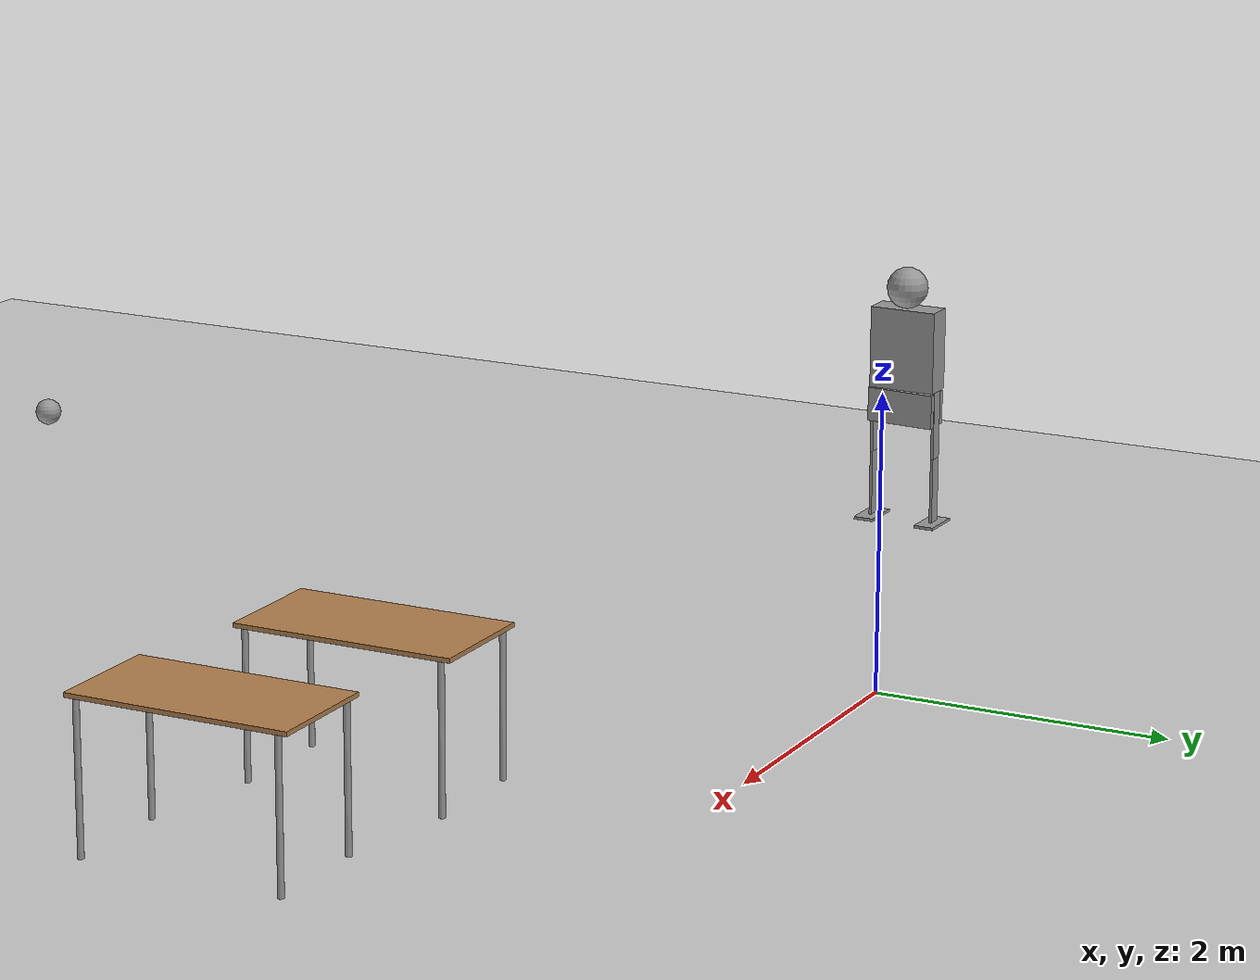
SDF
<sdf version="1.6">
 <world name="default">
  <model name="ground_plane">
   <static>1</static>
   <link name="link">
    <collision name="collision">
     <geometry><plane><normal>0 0 1</normal><size>100 100</size></plane></geometry>
     <surface>
      <contact><collide_bitmask>65535</collide_bitmask></contact>
      <friction><ode><mu>100</mu><mu2>50</mu2></ode></friction>
     </surface>
    </collision>
    <visual name="visual">
     <cast_shadows>0</cast_shadows>
     <geometry><plane><normal>0 0 1</normal><size>100 100</size></plane></geometry>
     <material>
      <script><uri>file://media/materials/scripts/gazebo.material</uri><name>Gazebo/Grey</name></script>
     </material>
    </visual>
   </link>
  </model>
  <model name="table_0">
   <static>1</static>
   <link name="link">
    <collision name="surface">
     <pose>0 0 1 0 -0 0</pose>
     <geometry><box><size>1.5 0.8 0.03</size></box></geometry>
     <surface><friction><ode><mu>0.6</mu><mu2>0.6</mu2></ode></friction></surface>
    </collision>
    <visual name="visual1">
     <pose>0 0 1 0 -0 0</pose>
     <geometry><box><size>1.5 0.8 0.03</size></box></geometry>
     <material>
      <script><uri>file://media/materials/scripts/gazebo.material</uri><name>Gazebo/Wood</name></script>
     </material>
    </visual>
    <collision name="front_left_leg">
     <pose>0.68 0.38 0.5 0 -0 0</pose>
     <geometry><cylinder><radius>0.02</radius><length>1</length></cylinder></geometry>
    </collision>
    <visual name="front_left_leg">
     <pose>0.68 0.38 0.5 0 -0 0</pose>
     <geometry><cylinder><radius>0.02</radius><length>1</length></cylinder></geometry>
     <material>
      <script><uri>file://media/materials/scripts/gazebo.material</uri><name>Gazebo/Grey</name></script>
     </material>
    </visual>
    <collision name="front_right_leg">
     <pose>0.68 -0.38 0.5 0 -0 0</pose>
     <geometry><cylinder><radius>0.02</radius><length>1</length></cylinder></geometry>
    </collision>
    <visual name="front_right_leg">
     <pose>0.68 -0.38 0.5 0 -0 0</pose>
     <geometry><cylinder><radius>0.02</radius><length>1</length></cylinder></geometry>
     <material>
      <script><uri>file://media/materials/scripts/gazebo.material</uri><name>Gazebo/Grey</name></script>
     </material>
    </visual>
    <collision name="back_right_leg">
     <pose>-0.68 -0.38 0.5 0 -0 0</pose>
     <geometry><cylinder><radius>0.02</radius><length>1</length></cylinder></geometry>
    </collision>
    <visual name="back_right_leg">
     <pose>-0.68 -0.38 0.5 0 -0 0</pose>
     <geometry><cylinder><radius>0.02</radius><length>1</length></cylinder></geometry>
     <material>
      <script><uri>file://media/materials/scripts/gazebo.material</uri><name>Gazebo/Grey</name></script>
     </material>
    </visual>
    <collision name="back_left_leg">
     <pose>-0.68 0.38 0.5 0 -0 0</pose>
     <geometry><cylinder><radius>0.02</radius><length>1</length></cylinder></geometry>
    </collision>
    <visual name="back_left_leg">
     <pose>-0.68 0.38 0.5 0 -0 0</pose>
     <geometry><cylinder><radius>0.02</radius><length>1</length></cylinder></geometry>
     <material>
      <script><uri>file://media/materials/scripts/gazebo.material</uri><name>Gazebo/Grey</name></script>
     </material>
    </visual>
   </link>
   <pose>2.98482 -2.02047 0 0 0 -1.5708</pose>
  </model>
  <model name="table_2">
   <static>1</static>
   <link name="link">
    <collision name="surface">
     <pose>0 0 1 0 -0 0</pose>
     <geometry><box><size>1.5 0.8 0.03</size></box></geometry>
     <surface><friction><ode><mu>0.6</mu><mu2>0.6</mu2></ode></friction></surface>
    </collision>
    <visual name="visual1">
     <pose>0 0 1 0 -0 0</pose>
     <geometry><box><size>1.5 0.8 0.03</size></box></geometry>
     <material>
      <script><uri>file://media/materials/scripts/gazebo.material</uri><name>Gazebo/Wood</name></script>
     </material>
    </visual>
    <collision name="front_left_leg">
     <pose>0.68 0.38 0.5 0 -0 0</pose>
     <geometry><cylinder><radius>0.02</radius><length>1</length></cylinder></geometry>
    </collision>
    <visual name="front_left_leg">
     <pose>0.68 0.38 0.5 0 -0 0</pose>
     <geometry><cylinder><radius>0.02</radius><length>1</length></cylinder></geometry>
     <material>
      <script><uri>file://media/materials/scripts/gazebo.material</uri><name>Gazebo/Grey</name></script>
     </material>
    </visual>
    <collision name="front_right_leg">
     <pose>0.68 -0.38 0.5 0 -0 0</pose>
     <geometry><cylinder><radius>0.02</radius><length>1</length></cylinder></geometry>
    </collision>
    <visual name="front_right_leg">
     <pose>0.68 -0.38 0.5 0 -0 0</pose>
     <geometry><cylinder><radius>0.02</radius><length>1</length></cylinder></geometry>
     <material>
      <script><uri>file://media/materials/scripts/gazebo.material</uri><name>Gazebo/Grey</name></script>
     </material>
    </visual>
    <collision name="back_right_leg">
     <pose>-0.68 -0.38 0.5 0 -0 0</pose>
     <geometry><cylinder><radius>0.02</radius><length>1</length></cylinder></geometry>
    </collision>
    <visual name="back_right_leg">
     <pose>-0.68 -0.38 0.5 0 -0 0</pose>
     <geometry><cylinder><radius>0.02</radius><length>1</length></cylinder></geometry>
     <material>
      <script><uri>file://media/materials/scripts/gazebo.material</uri><name>Gazebo/Grey</name></script>
     </material>
    </visual>
    <collision name="back_left_leg">
     <pose>-0.68 0.38 0.5 0 -0 0</pose>
     <geometry><cylinder><radius>0.02</radius><length>1</length></cylinder></geometry>
    </collision>
    <visual name="back_left_leg">
     <pose>-0.68 0.38 0.5 0 -0 0</pose>
     <geometry><cylinder><radius>0.02</radius><length>1</length></cylinder></geometry>
     <material>
      <script><uri>file://media/materials/scripts/gazebo.material</uri><name>Gazebo/Grey</name></script>
     </material>
    </visual>
   </link>
   <pose>4.56851 -2.18349 0 0 0 -1.5708</pose>
  </model>
  <model name="HumanoidRobot">
   <link name="link_0">
    <inertial>
     <mass>1</mass>
     <inertia>
      <ixx>0.166667</ixx>
      <ixy>0</ixy>
      <ixz>0</ixz>
      <iyy>0.166667</iyy>
      <iyz>0</iyz>
      <izz>0.166667</izz>
     </inertia>
    </inertial>
    <pose>-0.343615 0.441205 -0.57 0 -0 0</pose>
    <visual name="visual">
     <geometry><box><size>0.3 0.15 0.02</size></box></geometry>
     <material>
      <lighting>1</lighting>
      <script><uri>file://media/materials/scripts/gazebo.material</uri><name>Gazebo/Grey</name></script>
      <shader type="vertex"><normal_map>__default__</normal_map></shader>
      <ambient>0.3 0.3 0.3 1</ambient>
      <diffuse>0.7 0.7 0.7 1</diffuse>
      <specular>0.01 0.01 0.01 1</specular>
      <emissive>0 0 0 1</emissive>
     </material>
    </visual>
    <collision name="collision">
     <geometry><box><size>0.3 0.15 0.02</size></box></geometry>
     <surface>
      <friction>
       <ode><mu>1</mu><mu2>1</mu2><fdir1>0 0 0</fdir1><slip1>0</slip1><slip2>0</slip2></ode>
       <torsional>
        <coefficient>1</coefficient>
        <patch_radius>0</patch_radius>
        <surface_radius>0</surface_radius>
        <use_patch_radius>1</use_patch_radius>
        <ode><slip>0</slip></ode>
       </torsional>
      </friction>
      <bounce><restitution_coefficient>0</restitution_coefficient><threshold>1e+06</threshold></bounce>
      <contact>
       <collide_without_contact>0</collide_without_contact>
       <collide_without_contact_bitmask>1</collide_without_contact_bitmask>
       <collide_bitmask>1</collide_bitmask>
       <ode>
        <soft_cfm>0</soft_cfm>
        <soft_erp>0.2</soft_erp>
        <kp>1e+13</kp>
        <kd>1</kd>
        <max_vel>0.01</max_vel>
        <min_depth>0</min_depth>
       </ode>
       <bullet>
        <split_impulse>1</split_impulse>
        <split_impulse_penetration_threshold>-0.01</split_impulse_penetration_threshold>
        <soft_cfm>0</soft_cfm>
        <soft_erp>0.2</soft_erp>
        <kp>1e+13</kp>
        <kd>1</kd>
       </bullet>
      </contact>
     </surface>
    </collision>
   </link>
   <link name="link_0_0">
    <inertial>
     <mass>1</mass>
     <inertia>
      <ixx>0.166667</ixx>
      <ixy>0</ixy>
      <ixz>0</ixz>
      <iyy>0.166667</iyy>
      <iyz>0</iyz>
      <izz>0.166667</izz>
     </inertia>
    </inertial>
    <pose>-0.343165 0.687318 0.290025 -0.02 -0 0.000135</pose>
    <visual name="visual">
     <geometry><box><size>0.2 0.5 0.25</size></box></geometry>
     <material>
      <lighting>1</lighting>
      <script><uri>file://media/materials/scripts/gazebo.material</uri><name>Gazebo/Grey</name></script>
      <emissive>0 0 0 1</emissive>
      <shader type="vertex"><normal_map>__default__</normal_map></shader>
      <ambient>0.3 0.3 0.3 1</ambient>
      <diffuse>0.7 0.7 0.7 1</diffuse>
      <specular>0.01 0.01 0.01 1</specular>
     </material>
    </visual>
    <collision name="collision">
     <geometry><box><size>0.2 0.5 0.25</size></box></geometry>
     <surface>
      <friction>
       <ode><mu>1</mu><mu2>1</mu2><fdir1>0 0 0</fdir1><slip1>0</slip1><slip2>0</slip2></ode>
       <torsional>
        <coefficient>1</coefficient>
        <patch_radius>0</patch_radius>
        <surface_radius>0</surface_radius>
        <use_patch_radius>1</use_patch_radius>
        <ode><slip>0</slip></ode>
       </torsional>
      </friction>
      <bounce><restitution_coefficient>0</restitution_coefficient><threshold>1e+06</threshold></bounce>
      <contact>
       <collide_without_contact>0</collide_without_contact>
       <collide_without_contact_bitmask>1</collide_without_contact_bitmask>
       <collide_bitmask>1</collide_bitmask>
       <ode>
        <soft_cfm>0</soft_cfm>
        <soft_erp>0.2</soft_erp>
        <kp>1e+13</kp>
        <kd>1</kd>
        <max_vel>0.01</max_vel>
        <min_depth>0</min_depth>
       </ode>
       <bullet>
        <split_impulse>1</split_impulse>
        <split_impulse_penetration_threshold>-0.01</split_impulse_penetration_threshold>
        <soft_cfm>0</soft_cfm>
        <soft_erp>0.2</soft_erp>
        <kp>1e+13</kp>
        <kd>1</kd>
       </bullet>
      </contact>
     </surface>
    </collision>
   </link>
   <link name="link_0_1">
    <inertial>
     <mass>1</mass>
     <inertia>
      <ixx>0.166667</ixx>
      <ixy>0</ixy>
      <ixz>0</ixz>
      <iyy>0.166667</iyy>
      <iyz>0</iyz>
      <izz>0.166667</izz>
     </inertia>
    </inertial>
    <pose>-0.363163 0.687646 0.720003 1.1e-05 -1e-06 -0.016637</pose>
    <visual name="visual">
     <geometry><box><size>0.2 0.5 0.6</size></box></geometry>
     <material>
      <lighting>1</lighting>
      <script><uri>file://media/materials/scripts/gazebo.material</uri><name>Gazebo/Grey</name></script>
      <shader type="vertex"><normal_map>__default__</normal_map></shader>
      <ambient>0.3 0.3 0.3 1</ambient>
      <diffuse>0.7 0.7 0.7 1</diffuse>
      <specular>0.01 0.01 0.01 1</specular>
      <emissive>0 0 0 1</emissive>
     </material>
    </visual>
    <collision name="collision">
     <geometry><box><size>0.2 0.5 0.6</size></box></geometry>
     <surface>
      <friction>
       <ode><mu>1</mu><mu2>1</mu2><fdir1>0 0 0</fdir1><slip1>0</slip1><slip2>0</slip2></ode>
       <torsional>
        <coefficient>1</coefficient>
        <patch_radius>0</patch_radius>
        <surface_radius>0</surface_radius>
        <use_patch_radius>1</use_patch_radius>
        <ode><slip>0</slip></ode>
       </torsional>
      </friction>
      <bounce><restitution_coefficient>0</restitution_coefficient><threshold>1e+06</threshold></bounce>
      <contact>
       <collide_without_contact>0</collide_without_contact>
       <collide_without_contact_bitmask>1</collide_without_contact_bitmask>
       <collide_bitmask>1</collide_bitmask>
       <ode>
        <soft_cfm>0</soft_cfm>
        <soft_erp>0.2</soft_erp>
        <kp>1e+13</kp>
        <kd>1</kd>
        <max_vel>0.01</max_vel>
        <min_depth>0</min_depth>
       </ode>
       <bullet>
        <split_impulse>1</split_impulse>
        <split_impulse_penetration_threshold>-0.01</split_impulse_penetration_threshold>
        <soft_cfm>0</soft_cfm>
        <soft_erp>0.2</soft_erp>
        <kp>1e+13</kp>
        <kd>1</kd>
       </bullet>
      </contact>
     </surface>
    </collision>
   </link>
   <link name="link_0_clone">
    <inertial>
     <mass>1</mass>
     <inertia>
      <ixx>0.166667</ixx>
      <ixy>0</ixy>
      <ixz>0</ixz>
      <iyy>0.166667</iyy>
      <iyz>0</iyz>
      <izz>0.166667</izz>
     </inertia>
    </inertial>
    <pose>-0.332418 0.927316 -0.56999 1.1e-05 -1e-06 -0.016637</pose>
    <visual name="visual">
     <geometry><box><size>0.3 0.15 0.02</size></box></geometry>
     <material>
      <lighting>1</lighting>
      <script><uri>file://media/materials/scripts/gazebo.material</uri><name>Gazebo/Grey</name></script>
      <shader type="vertex"><normal_map>__default__</normal_map></shader>
      <ambient>0.3 0.3 0.3 1</ambient>
      <diffuse>0.7 0.7 0.7 1</diffuse>
      <specular>0.01 0.01 0.01 1</specular>
      <emissive>0 0 0 1</emissive>
     </material>
    </visual>
    <collision name="collision">
     <geometry><box><size>0.3 0.15 0.02</size></box></geometry>
     <surface>
      <friction>
       <ode><mu>1</mu><mu2>1</mu2><fdir1>0 0 0</fdir1><slip1>0</slip1><slip2>0</slip2></ode>
       <torsional>
        <coefficient>1</coefficient>
        <patch_radius>0</patch_radius>
        <surface_radius>0</surface_radius>
        <use_patch_radius>1</use_patch_radius>
        <ode><slip>0</slip></ode>
       </torsional>
      </friction>
      <bounce><restitution_coefficient>0</restitution_coefficient><threshold>1e+06</threshold></bounce>
      <contact>
       <collide_without_contact>0</collide_without_contact>
       <collide_without_contact_bitmask>1</collide_without_contact_bitmask>
       <collide_bitmask>1</collide_bitmask>
       <ode>
        <soft_cfm>0</soft_cfm>
        <soft_erp>0.2</soft_erp>
        <kp>1e+13</kp>
        <kd>1</kd>
        <max_vel>0.01</max_vel>
        <min_depth>0</min_depth>
       </ode>
       <bullet>
        <split_impulse>1</split_impulse>
        <split_impulse_penetration_threshold>-0.01</split_impulse_penetration_threshold>
        <soft_cfm>0</soft_cfm>
        <soft_erp>0.2</soft_erp>
        <kp>1e+13</kp>
        <kd>1</kd>
       </bullet>
      </contact>
     </surface>
    </collision>
   </link>
   <link name="link_1">
    <inertial>
     <mass>1</mass>
     <inertia>
      <ixx>0.166667</ixx>
      <ixy>0</ixy>
      <ixz>0</ixz>
      <iyy>0.166667</iyy>
      <iyz>0</iyz>
      <izz>0.166667</izz>
     </inertia>
    </inertial>
    <pose>-0.35434 0.444776 -0.33 0 -0 0</pose>
    <visual name="visual">
     <geometry><box><size>0.1 0.02 0.5</size></box></geometry>
     <material>
      <lighting>1</lighting>
      <script><uri>file://media/materials/scripts/gazebo.material</uri><name>Gazebo/Grey</name></script>
      <shader type="vertex"><normal_map>__default__</normal_map></shader>
      <ambient>0.3 0.3 0.3 1</ambient>
      <diffuse>0.7 0.7 0.7 1</diffuse>
      <specular>0.01 0.01 0.01 1</specular>
      <emissive>0 0 0 1</emissive>
     </material>
    </visual>
    <collision name="collision">
     <geometry><box><size>0.1 0.02 0.5</size></box></geometry>
     <surface>
      <friction>
       <ode><mu>1</mu><mu2>1</mu2><fdir1>0 0 0</fdir1><slip1>0</slip1><slip2>0</slip2></ode>
       <torsional>
        <coefficient>1</coefficient>
        <patch_radius>0</patch_radius>
        <surface_radius>0</surface_radius>
        <use_patch_radius>1</use_patch_radius>
        <ode><slip>0</slip></ode>
       </torsional>
      </friction>
      <bounce><restitution_coefficient>0</restitution_coefficient><threshold>1e+06</threshold></bounce>
      <contact>
       <collide_without_contact>0</collide_without_contact>
       <collide_without_contact_bitmask>1</collide_without_contact_bitmask>
       <collide_bitmask>1</collide_bitmask>
       <ode>
        <soft_cfm>0</soft_cfm>
        <soft_erp>0.2</soft_erp>
        <kp>1e+13</kp>
        <kd>1</kd>
        <max_vel>0.01</max_vel>
        <min_depth>0</min_depth>
       </ode>
       <bullet>
        <split_impulse>1</split_impulse>
        <split_impulse_penetration_threshold>-0.01</split_impulse_penetration_threshold>
        <soft_cfm>0</soft_cfm>
        <soft_erp>0.2</soft_erp>
        <kp>1e+13</kp>
        <kd>1</kd>
       </bullet>
      </contact>
     </surface>
    </collision>
   </link>
   <link name="link_1_0">
    <inertial>
     <mass>1</mass>
     <inertia><ixx>0.1</ixx><ixy>0</ixy><ixz>0</ixz><iyy>0.1</iyy><iyz>0</iyz><izz>0.1</izz></inertia>
    </inertial>
    <pose>-0.343166 0.687308 1.17 1.1e-05 -1e-06 -0.016637</pose>
    <visual name="visual">
     <geometry><sphere><radius>0.15</radius></sphere></geometry>
     <material>
      <lighting>1</lighting>
      <script><uri>file://media/materials/scripts/gazebo.material</uri><name>Gazebo/Grey</name></script>
      <shader type="vertex"><normal_map>__default__</normal_map></shader>
      <ambient>0.3 0.3 0.3 1</ambient>
      <diffuse>0.7 0.7 0.7 1</diffuse>
      <specular>0.01 0.01 0.01 1</specular>
      <emissive>0 0 0 1</emissive>
     </material>
    </visual>
    <collision name="collision">
     <geometry><sphere><radius>0.15</radius></sphere></geometry>
     <surface>
      <friction>
       <ode><mu>1</mu><mu2>1</mu2><fdir1>0 0 0</fdir1><slip1>0</slip1><slip2>0</slip2></ode>
       <torsional>
        <coefficient>1</coefficient>
        <patch_radius>0</patch_radius>
        <surface_radius>0</surface_radius>
        <use_patch_radius>1</use_patch_radius>
        <ode><slip>0</slip></ode>
       </torsional>
      </friction>
      <bounce><restitution_coefficient>0</restitution_coefficient><threshold>1e+06</threshold></bounce>
      <contact>
       <collide_without_contact>0</collide_without_contact>
       <collide_without_contact_bitmask>1</collide_without_contact_bitmask>
       <collide_bitmask>1</collide_bitmask>
       <ode>
        <soft_cfm>0</soft_cfm>
        <soft_erp>0.2</soft_erp>
        <kp>1e+13</kp>
        <kd>1</kd>
        <max_vel>0.01</max_vel>
        <min_depth>0</min_depth>
       </ode>
       <bullet>
        <split_impulse>1</split_impulse>
        <split_impulse_penetration_threshold>-0.01</split_impulse_penetration_threshold>
        <soft_cfm>0</soft_cfm>
        <soft_erp>0.2</soft_erp>
        <kp>1e+13</kp>
        <kd>1</kd>
       </bullet>
      </contact>
     </surface>
    </collision>
   </link>
   <link name="link_1_clone">
    <inertial>
     <mass>1</mass>
     <inertia>
      <ixx>0.166667</ixx>
      <ixy>0</ixy>
      <ixz>0</ixz>
      <iyy>0.166667</iyy>
      <iyz>0</iyz>
      <izz>0.166667</izz>
     </inertia>
    </inertial>
    <pose>-0.354336 0.444783 0.17 0 -0 0.000135</pose>
    <visual name="visual">
     <geometry><box><size>0.1 0.02 0.5</size></box></geometry>
     <material>
      <lighting>1</lighting>
      <script><uri>file://media/materials/scripts/gazebo.material</uri><name>Gazebo/Grey</name></script>
      <shader type="vertex"><normal_map>__default__</normal_map></shader>
      <ambient>0.3 0.3 0.3 1</ambient>
      <diffuse>0.7 0.7 0.7 1</diffuse>
      <specular>0.01 0.01 0.01 1</specular>
      <emissive>0 0 0 1</emissive>
     </material>
    </visual>
    <collision name="collision">
     <geometry><box><size>0.1 0.02 0.5</size></box></geometry>
     <surface>
      <friction>
       <ode><mu>1</mu><mu2>1</mu2><fdir1>0 0 0</fdir1><slip1>0</slip1><slip2>0</slip2></ode>
       <torsional>
        <coefficient>1</coefficient>
        <patch_radius>0</patch_radius>
        <surface_radius>0</surface_radius>
        <use_patch_radius>1</use_patch_radius>
        <ode><slip>0</slip></ode>
       </torsional>
      </friction>
      <bounce><restitution_coefficient>0</restitution_coefficient><threshold>1e+06</threshold></bounce>
      <contact>
       <collide_without_contact>0</collide_without_contact>
       <collide_without_contact_bitmask>1</collide_without_contact_bitmask>
       <collide_bitmask>1</collide_bitmask>
       <ode>
        <soft_cfm>0</soft_cfm>
        <soft_erp>0.2</soft_erp>
        <kp>1e+13</kp>
        <kd>1</kd>
        <max_vel>0.01</max_vel>
        <min_depth>0</min_depth>
       </ode>
       <bullet>
        <split_impulse>1</split_impulse>
        <split_impulse_penetration_threshold>-0.01</split_impulse_penetration_threshold>
        <soft_cfm>0</soft_cfm>
        <soft_erp>0.2</soft_erp>
        <kp>1e+13</kp>
        <kd>1</kd>
       </bullet>
      </contact>
     </surface>
    </collision>
   </link>
   <link name="link_1_clone_clone">
    <inertial>
     <mass>1</mass>
     <inertia>
      <ixx>0.166667</ixx>
      <ixy>0</ixy>
      <ixz>0</ixz>
      <iyy>0.166667</iyy>
      <iyz>0</iyz>
      <izz>0.166667</izz>
     </inertia>
    </inertial>
    <pose>-0.342645 0.929993 0.17001 2e-05 0 -0.002009</pose>
    <visual name="visual">
     <geometry><box><size>0.1 0.02 0.5</size></box></geometry>
     <material>
      <lighting>1</lighting>
      <script><uri>file://media/materials/scripts/gazebo.material</uri><name>Gazebo/Grey</name></script>
      <shader type="vertex"><normal_map>__default__</normal_map></shader>
      <ambient>0.3 0.3 0.3 1</ambient>
      <diffuse>0.7 0.7 0.7 1</diffuse>
      <specular>0.01 0.01 0.01 1</specular>
      <emissive>0 0 0 1</emissive>
     </material>
    </visual>
    <collision name="collision">
     <geometry><box><size>0.1 0.02 0.5</size></box></geometry>
     <surface>
      <friction>
       <ode><mu>1</mu><mu2>1</mu2><fdir1>0 0 0</fdir1><slip1>0</slip1><slip2>0</slip2></ode>
       <torsional>
        <coefficient>1</coefficient>
        <patch_radius>0</patch_radius>
        <surface_radius>0</surface_radius>
        <use_patch_radius>1</use_patch_radius>
        <ode><slip>0</slip></ode>
       </torsional>
      </friction>
      <bounce><restitution_coefficient>0</restitution_coefficient><threshold>1e+06</threshold></bounce>
      <contact>
       <collide_without_contact>0</collide_without_contact>
       <collide_without_contact_bitmask>1</collide_without_contact_bitmask>
       <collide_bitmask>1</collide_bitmask>
       <ode>
        <soft_cfm>0</soft_cfm>
        <soft_erp>0.2</soft_erp>
        <kp>1e+13</kp>
        <kd>1</kd>
        <max_vel>0.01</max_vel>
        <min_depth>0</min_depth>
       </ode>
       <bullet>
        <split_impulse>1</split_impulse>
        <split_impulse_penetration_threshold>-0.01</split_impulse_penetration_threshold>
        <soft_cfm>0</soft_cfm>
        <soft_erp>0.2</soft_erp>
        <kp>1e+13</kp>
        <kd>1</kd>
       </bullet>
      </contact>
     </surface>
    </collision>
   </link>
   <link name="link_1_clone_clone_0">
    <inertial>
     <mass>1</mass>
     <inertia>
      <ixx>0.166667</ixx>
      <ixy>0</ixy>
      <ixz>0</ixz>
      <iyy>0.166667</iyy>
      <iyz>0</iyz>
      <izz>0.166667</izz>
     </inertia>
    </inertial>
    <pose>-0.342645 0.930003 -0.32999 2e-05 0 -0.002009</pose>
    <visual name="visual">
     <geometry><box><size>0.1 0.02 0.5</size></box></geometry>
     <material>
      <lighting>1</lighting>
      <script><uri>file://media/materials/scripts/gazebo.material</uri><name>Gazebo/Grey</name></script>
      <shader type="vertex"><normal_map>__default__</normal_map></shader>
      <ambient>0.3 0.3 0.3 1</ambient>
      <diffuse>0.7 0.7 0.7 1</diffuse>
      <specular>0.01 0.01 0.01 1</specular>
      <emissive>0 0 0 1</emissive>
     </material>
    </visual>
    <collision name="collision">
     <geometry><box><size>0.1 0.02 0.5</size></box></geometry>
     <surface>
      <friction>
       <ode><mu>1</mu><mu2>1</mu2><fdir1>0 0 0</fdir1><slip1>0</slip1><slip2>0</slip2></ode>
       <torsional>
        <coefficient>1</coefficient>
        <patch_radius>0</patch_radius>
        <surface_radius>0</surface_radius>
        <use_patch_radius>1</use_patch_radius>
        <ode><slip>0</slip></ode>
       </torsional>
      </friction>
      <bounce><restitution_coefficient>0</restitution_coefficient><threshold>1e+06</threshold></bounce>
      <contact>
       <collide_without_contact>0</collide_without_contact>
       <collide_without_contact_bitmask>1</collide_without_contact_bitmask>
       <collide_bitmask>1</collide_bitmask>
       <ode>
        <soft_cfm>0</soft_cfm>
        <soft_erp>0.2</soft_erp>
        <kp>1e+13</kp>
        <kd>1</kd>
        <max_vel>0.01</max_vel>
        <min_depth>0</min_depth>
       </ode>
       <bullet>
        <split_impulse>1</split_impulse>
        <split_impulse_penetration_threshold>-0.01</split_impulse_penetration_threshold>
        <soft_cfm>0</soft_cfm>
        <soft_erp>0.2</soft_erp>
        <kp>1e+13</kp>
        <kd>1</kd>
       </bullet>
      </contact>
     </surface>
    </collision>
   </link>
   <joint name="link_0_0_JOINT_1" type="fixed">
    <parent>link_0_0</parent>
    <child>link_0_1</child>
    <physics>
     <ode><limit><cfm>0</cfm><erp>0.2</erp></limit><suspension><cfm>0</cfm><erp>0.2</erp></suspension></ode>
    </physics>
   </joint>
   <joint name="link_0_0_JOINT_3" type="fixed">
    <parent>link_0_0</parent>
    <child>link_1_clone_clone</child>
    <physics>
     <ode><limit><cfm>0</cfm><erp>0.2</erp></limit><suspension><cfm>0</cfm><erp>0.2</erp></suspension></ode>
    </physics>
   </joint>
   <joint name="link_0_1_JOINT_3" type="fixed">
    <parent>link_0_1</parent>
    <child>link_1_0</child>
    <physics>
     <ode><limit><cfm>0</cfm><erp>0.2</erp></limit><suspension><cfm>0</cfm><erp>0.2</erp></suspension></ode>
    </physics>
   </joint>
   <joint name="link_0_JOINT_0" type="fixed">
    <parent>link_0</parent>
    <child>link_1</child>
    <physics>
     <ode><limit><cfm>0</cfm><erp>0.2</erp></limit><suspension><cfm>0</cfm><erp>0.2</erp></suspension></ode>
    </physics>
   </joint>
   <joint name="link_1_JOINT_0" type="fixed">
    <parent>link_1</parent>
    <child>link_1_clone</child>
    <physics>
     <ode><limit><cfm>0</cfm><erp>0.2</erp></limit><suspension><cfm>0</cfm><erp>0.2</erp></suspension></ode>
    </physics>
   </joint>
   <joint name="link_1_clone_JOINT_1" type="fixed">
    <parent>link_1_clone</parent>
    <child>link_0_0</child>
    <physics>
     <ode><limit><cfm>0</cfm><erp>0.2</erp></limit><suspension><cfm>0</cfm><erp>0.2</erp></suspension></ode>
    </physics>
   </joint>
   <joint name="link_1_clone_clone_0_JOINT_0" type="revolute">
    <parent>link_1_clone_clone_0</parent>
    <child>link_0_clone</child>
    <axis>
     <xyz>1 0 0</xyz>
     <use_parent_model_frame>0</use_parent_model_frame>
     <limit>
      <lower>-1.79769e+308</lower>
      <upper>1.79769e+308</upper>
      <effort>-1</effort>
      <velocity>-1</velocity>
     </limit>
     <dynamics>
      <spring_reference>0</spring_reference>
      <spring_stiffness>0</spring_stiffness>
      <damping>0</damping>
     </dynamics>
    </axis>
    <physics>
     <ode><limit><cfm>0</cfm><erp>0.2</erp></limit><suspension><cfm>0</cfm><erp>0.2</erp></suspension></ode>
    </physics>
   </joint>
   <joint name="link_1_clone_clone_JOINT_5" type="fixed">
    <parent>link_1_clone_clone</parent>
    <child>link_1_clone_clone_0</child>
    <physics>
     <ode><limit><cfm>0</cfm><erp>0.2</erp></limit><suspension><cfm>0</cfm><erp>0.2</erp></suspension></ode>
    </physics>
   </joint>
   <static>0</static>
   <pose>-3.4191 -2.14345 0.579997 -3e-06 1e-06 -0.004075</pose>
  </model>
  <model name="my_ball">
   <link name="link_0">
    <inertial>
     <mass>1</mass>
     <inertia><ixx>0.1</ixx><ixy>0</ixy><ixz>0</ixz><iyy>0.1</iyy><iyz>0</iyz><izz>0.1</izz></inertia>
    </inertial>
    <visual name="visual">
     <geometry><sphere><radius>0.1</radius></sphere></geometry>
     <material>
      <lighting>1</lighting>
      <script><uri>file://media/materials/scripts/gazebo.material</uri><name>Gazebo/Grey</name></script>
      <shader type="vertex"><normal_map>__default__</normal_map></shader>
      <ambient>1 1 1 1</ambient>
      <diffuse>1 1 1 1</diffuse>
      <specular>1 1 1 1</specular>
      <emissive>1 1 1 1</emissive>
     </material>
    </visual>
    <collision name="collision">
     <geometry><sphere><radius>0.1</radius></sphere></geometry>
     <surface>
      <friction>
       <ode><mu>1</mu><mu2>1</mu2><fdir1>0 0 0</fdir1><slip1>0</slip1><slip2>0</slip2></ode>
       <torsional>
        <coefficient>1</coefficient>
        <patch_radius>0</patch_radius>
        <surface_radius>0</surface_radius>
        <use_patch_radius>1</use_patch_radius>
        <ode><slip>0</slip></ode>
       </torsional>
      </friction>
      <bounce><restitution_coefficient>0</restitution_coefficient><threshold>1e+06</threshold></bounce>
      <contact>
       <collide_without_contact>0</collide_without_contact>
       <collide_without_contact_bitmask>1</collide_without_contact_bitmask>
       <collide_bitmask>1</collide_bitmask>
       <ode>
        <soft_cfm>0</soft_cfm>
        <soft_erp>0.2</soft_erp>
        <kp>1e+13</kp>
        <kd>1</kd>
        <max_vel>0.01</max_vel>
        <min_depth>0</min_depth>
       </ode>
       <bullet>
        <split_impulse>1</split_impulse>
        <split_impulse_penetration_threshold>-0.01</split_impulse_penetration_threshold>
        <soft_cfm>0</soft_cfm>
        <soft_erp>0.2</soft_erp>
        <kp>1e+13</kp>
        <kd>1</kd>
       </bullet>
      </contact>
     </surface>
    </collision>
   </link>
   <static>0</static>
   <pose>-3.09931 -8.54152 0.1 0 -0 0</pose>
  </model>
 </world>
</sdf>
